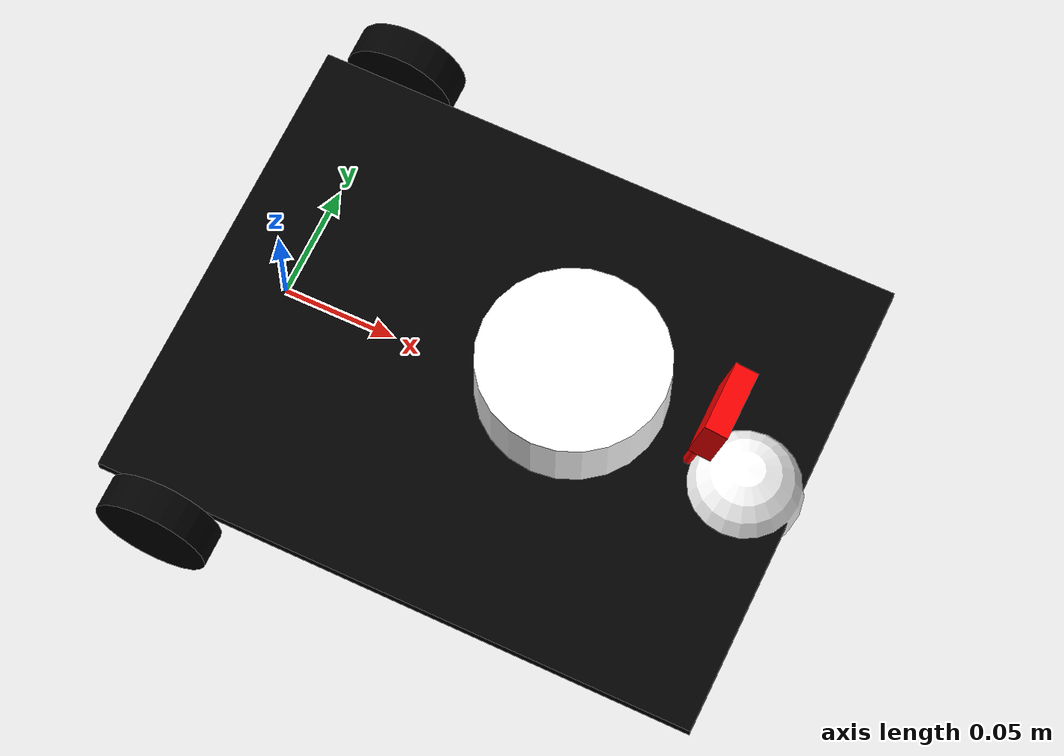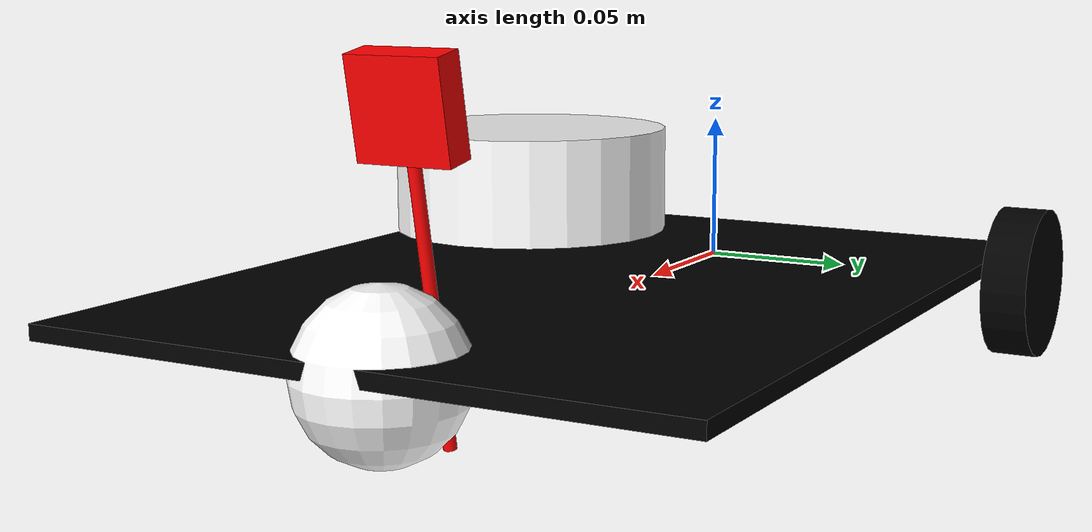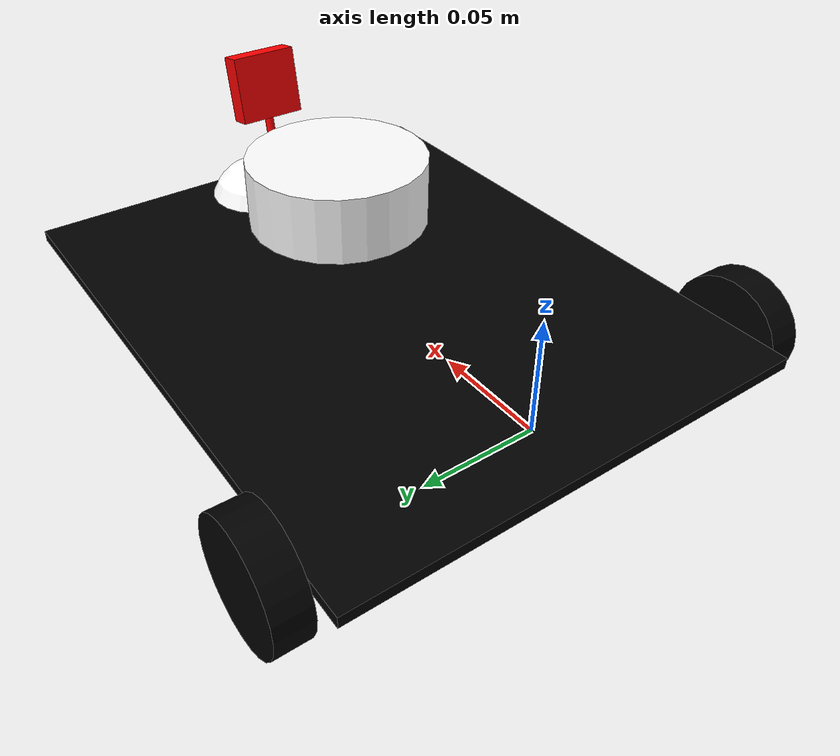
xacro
<?xml version="1.0"?>
<robot xmlns:xacro="http://www.ros.org/wiki/xacro"  name="robot">

    <xacro:arg name="use_ros2_control" default="true"/>

	<xacro:include filename="robot_core.xacro"/>

	<xacro:if value="$(arg use_ros2_control)">
        <xacro:include filename="ros2_control.xacro" />
    </xacro:if>
    <xacro:unless value="$(arg use_ros2_control)">
        <xacro:include filename="gazebo_control.xacro" />
    </xacro:unless>
	<xacro:include filename="lidar.xacro"/>
	<xacro:include filename="camera.xacro"/>
</robot>

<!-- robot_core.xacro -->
<robot xmlns:xacro="http://www.ros.org/wiki/xacro" >

    <xacro:include filename="inertial_macros.xacro"/>

    <xacro:property name="chassis_length" value="0.335"/>
    <xacro:property name="chassis_width" value="0.265"/>
    <xacro:property name="chassis_height" value="0.138"/>
    <xacro:property name="chassis_mass" value="1.0"/>
    <xacro:property name="wheel_radius" value="0.033"/>
    <xacro:property name="wheel_thickness" value="0.026"/>
    <xacro:property name="wheel_mass" value="0.05"/>
    <xacro:property name="wheel_offset_x" value="0.226"/>
    <xacro:property name="wheel_offset_y" value="0.1485"/>
    <xacro:property name="wheel_offset_z" value="0.01"/>
    <xacro:property name="caster_wheel_radius" value="0.01"/>
    <xacro:property name="caster_wheel_mass" value="0.01"/>
    <xacro:property name="caster_wheel_offset_x" value="0.075"/>
    <xacro:property name="caster_wheel_offset_z" value="${wheel_offset_z - wheel_radius + caster_wheel_radius}"/>

    <material name="white">
        <color rgba="1 1 1 1" />
    </material>

    <material name="orange">
        <color rgba="1 0.3 0.1 1"/>
    </material>

    <material name="blue">
        <color rgba="0.2 0.2 1 1"/>
    </material>

    <material name="black">
        <color rgba="0 0 0 1"/>
    </material>

    <material name="red">
        <color rgba="1 0 0 1"/>
    </material>

    <!-- BASE LINK -->
    <link name="base_link">

    </link>

     <!-- BASE FOOTPRINT LINK -->
    <joint name="base_footprint_joint" type="fixed">
        <parent link="base_link"/>
        <child link="base_footprint"/>
        <origin xyz="0 0 -0.05" rpy="0 0 0"/>
    </joint>

    <link name="base_footprint">

    </link>

    <!-- CHASSIS LINK -->
    <joint name="chassis_joint" type="fixed">
        <parent link="base_link"/>
        <child link="chassis"/>
        <origin xyz="-0.05 0 0"/>
    </joint>

    <link name="chassis">
        <visual>
            <origin xyz="0.15 0 0.005" rpy="0 0 ${pi/2}"/>
            <geometry>
                <box size="0.21 0.265 0.005"/>
            </geometry>
            <material name="black"/>
        </visual>
        <collision>
            <origin xyz="0.15 0 0.005"/>
            <geometry>
                <box size="0.21 0.265 0.005"/>
            </geometry>
        </collision>
        <xacro:inertial_box mass="0.5" x="0.3" y="0.3" z="0.15">
            <origin xyz="0.15 0 0.075" rpy="0 0 0"/>
        </xacro:inertial_box>
    </link>

    <gazebo reference="chassis">
        <material>Gazebo/Black</material>
    </gazebo>

    <!-- LEFT WHEEL LINK -->
    <joint name="left_wheel_joint" type="continuous">
        <parent link="base_link"/>
        <child link="left_wheel"/>
        <origin xyz="0 0.115 0" rpy="-${pi/2} 0 0" />
        <axis xyz="0 0 1"/>
    </joint>

    <link name="left_wheel">
        <visual>
            <geometry>
                <cylinder radius="0.025" length="0.015"/>
            </geometry>
            <material name="black"/>
        </visual>
        <collision>
            <geometry>
                <sphere radius="0.025"/>
            </geometry>
        </collision>
        <xacro:inertial_cylinder mass="0.1" length="0.04" radius="0.05">
            <origin xyz="0 0 0" rpy="0 0 0"/>
        </xacro:inertial_cylinder>
    </link>

    <gazebo reference="left_wheel">
        <material>Gazebo/Yellow</material>
    </gazebo>

    <!-- RIGHT WHEEL LINK -->
    <joint name="right_wheel_joint" type="continuous">
        <parent link="base_link"/>
        <child link="right_wheel"/>
        <origin xyz="0 -0.115 0" rpy="${pi/2} 0 0" />
        <axis xyz="0 0 -1"/>
    </joint>

    <link name="right_wheel">
        <visual>
            <geometry>
                <cylinder radius="0.025" length="0.015"/>
            </geometry>
            <material name="black"/>
        </visual>
        <collision>
            <geometry>
                <sphere radius="0.025"/>
            </geometry>
        </collision>
        <xacro:inertial_cylinder mass="0.1" length="0.04" radius="0.05">
            <origin xyz="0 0 0" rpy="0 0 0"/>
        </xacro:inertial_cylinder>
    </link>

    <gazebo reference="right_wheel">
        <material>Gazebo/Yellow</material>
    </gazebo>

    <!-- CASTER WHEEL LINK -->
    <joint name="caster_wheel_joint" type="fixed">
        <parent link="chassis"/>
        <child link="caster_wheel"/>
        <origin xyz="0.26 0 0"/>
    </joint>

    <link name="caster_wheel">
        <visual>
            <geometry>
                <sphere radius="0.025"/>
            </geometry>
            <material name="white"/>
        </visual>
        <collision>
            <geometry>
                <sphere radius="0.025"/>
            </geometry>
        </collision>
        <xacro:inertial_sphere mass="0.1" radius="0.05">
            <origin xyz="0 0 0" rpy="0 0 0"/>
        </xacro:inertial_sphere>
    </link>

    <gazebo reference="caster_wheel">
        <material>Gazebo/White</material>
        <mu1 value="0.001"/> <!-- friction -->
        <mu2 value="0.001"/>
    </gazebo>

</robot>

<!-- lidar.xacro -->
<robot xmlns:xacro="http://www.ros.org/wiki/xacro" >

    <joint name="laser_joint" type="fixed">
        <parent link="chassis"/>
        <child link="laser_frame"/>
        <origin xyz="0.182 0 0.044" rpy="0 0 0"/>
    </joint>

    <link name="laser_frame">
        <visual>
            <geometry>
                <cylinder radius="0.04" length="0.03"/>
            </geometry>
            <material name="white"/>
        </visual>
        <collision>
            <geometry>
                <cylinder radius="0.05" length="0.04"/>
            </geometry>
        </collision>
        <xacro:inertial_cylinder mass="0.1" length="0.04" radius="0.05">
            <origin xyz="0 0 0" rpy="0 0 0"/>
        </xacro:inertial_cylinder>
    </link>

    <gazebo reference="laser_frame">
        <material>Gazebo/White</material>

        <sensor name="laser" type="ray">
            <pose> 0 0 0 0 0 0 </pose>
            <visualize>true</visualize>
            <update_rate>10</update_rate>
            <ray>
                <scan>
                    <horizontal>
                        <samples>360</samples>
                        <min_angle>-3.14</min_angle>
                        <max_angle>3.14</max_angle>
                    </horizontal>
                </scan>
                <range>
                    <min>0.3</min>
                    <max>12</max>
                </range>
            </ray>
            <plugin name="laser_controller" filename="libgazebo_ros_ray_sensor.so">
                <ros>
                    <argument>~/out:=scan</argument>
                </ros>
                <output_type>sensor_msgs/LaserScan</output_type>
                <frame_name>laser_frame</frame_name>
            </plugin>
        </sensor>
    </gazebo>

</robot>

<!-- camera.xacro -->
<robot xmlns:xacro="http://www.ros.org/wiki/xacro" >

    <joint name="camera_joint" type="fixed">
        <parent link="chassis"/>
        <child link="camera_link"/>
        <origin xyz="0.246 0 0.070" rpy="0 0.18 0"/>
    </joint>

    <link name="camera_link">
        <visual>
            <geometry>
                <box size="0.010 0.03 0.03"/>
            </geometry>
            <material name="red"/>
        </visual>
        <visual>
            <origin xyz="0 0 -0.05"/>
            <geometry>
                <cylinder radius="0.002" length="0.1"/>
            </geometry>
            <material name="red"/>
        </visual>
    </link>

    <joint name="camera_optical_joint" type="fixed">
        <parent link="camera_link"/>
        <child link="camera_link_optical"/>
        <origin xyz="0 0 0" rpy="${-pi/2} 0 ${-pi/2}"/>
    </joint>

    <link name="camera_link_optical"></link>

    <gazebo reference="camera_link">
        <material>Gazebo/RED</material>

        <sensor name="camera" type="camera">
            <pose> 0 0 0 0 0 0 </pose>
            <visualize>true</visualize>
            <update_rate>10</update_rate>
            <camera>
                <horizontal_fov>1.089</horizontal_fov>
                <image>
                    <format>R8G8B8</format>
                    <width>640</width>
                    <height>480</height>
                </image>
                <clip>
                    <near>0.05</near>
                    <far>8.0</far>
                </clip>
            </camera>
            <plugin name="camera_controller" filename="libgazebo_ros_camera.so">
                <frame_name>camera_link_optical</frame_name>
            </plugin>
        </sensor>
    </gazebo>

</robot>
